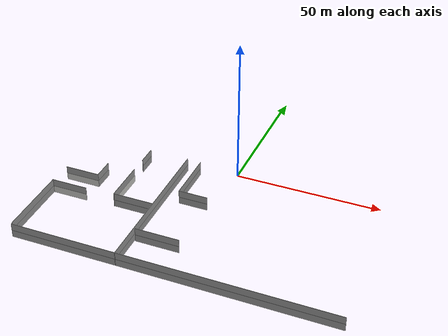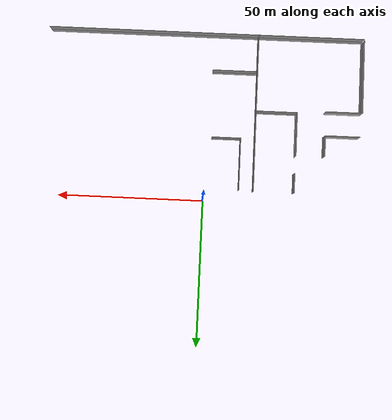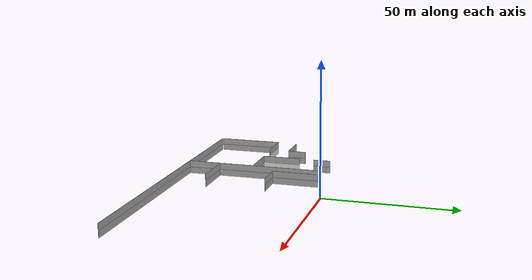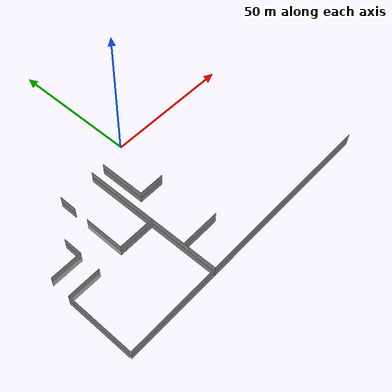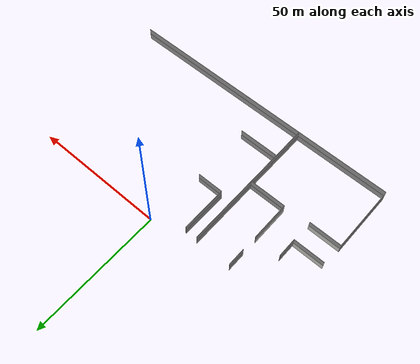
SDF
<sdf version="1.6">
 <model name="new_building">
  <pose>1.10912 -6.88825 0 0 -0 0</pose>
  <link name="Wall_10">
   <collision name="Wall_10_Collision">
    <geometry><box><size>25.25 0.15 2.5</size></box></geometry>
    <pose>0 0 1.25 0 -0 0</pose>
   </collision>
   <visual name="Wall_10_Visual">
    <pose>0 0 1.25 0 -0 0</pose>
    <geometry><box><size>25.25 0.15 2.5</size></box></geometry>
    <material>
     <script><uri>file://media/materials/scripts/gazebo.material</uri><name>Gazebo/Grey</name></script>
     <ambient>1 1 1 1</ambient>
    </material>
    <meta><layer>0</layer></meta>
   </visual>
   <pose>-54.4774 -37.7529 0 0 -0 1.5708</pose>
  </link>
  <link name="Wall_11">
   <collision name="Wall_11_Collision">
    <geometry><box><size>12.5 0.15 2.5</size></box></geometry>
    <pose>0 0 1.25 0 -0 0</pose>
   </collision>
   <visual name="Wall_11_Visual">
    <pose>0 0 1.25 0 -0 0</pose>
    <geometry><box><size>12.5 0.15 2.5</size></box></geometry>
    <material>
     <script><uri>file://media/materials/scripts/gazebo.material</uri><name>Gazebo/CeilingTiled</name></script>
     <ambient>1 1 1 1</ambient>
    </material>
    <meta><layer>0</layer></meta>
   </visual>
   <pose>-48.3024 -25.2029 0 0 -0 0</pose>
  </link>
  <link name="Wall_121">
   <collision name="Wall_121_Collision">
    <geometry><box><size>15 0.15 2.5</size></box></geometry>
    <pose>0 0 1.25 0 -0 0</pose>
   </collision>
   <visual name="Wall_121_Visual">
    <pose>0 0 1.25 0 -0 0</pose>
    <geometry><box><size>15 0.15 2.5</size></box></geometry>
    <material>
     <script><uri>file://media/materials/scripts/gazebo.material</uri><name>Gazebo/Grey</name></script>
     <ambient>1 1 1 1</ambient>
    </material>
    <meta><layer>1</layer></meta>
   </visual>
   <pose>-10.3428 -38.0102 2.5 0 -0 0</pose>
  </link>
  <link name="Wall_127">
   <collision name="Wall_127_Collision">
    <geometry><box><size>17.75 0.15 2.5</size></box></geometry>
    <pose>0 0 1.25 0 -0 0</pose>
   </collision>
   <visual name="Wall_127_Visual">
    <pose>0 0 1.25 0 -0 0</pose>
    <geometry><box><size>17.75 0.15 2.5</size></box></geometry>
    <material>
     <script><uri>file://media/materials/scripts/gazebo.material</uri><name>Gazebo/Grey</name></script>
     <ambient>1 1 1 1</ambient>
    </material>
    <meta><layer>1</layer></meta>
   </visual>
   <pose>-13.2896 -6.08457 2.5 0 -0 -1.5708</pose>
  </link>
  <link name="Wall_128">
   <collision name="Wall_128_Collision">
    <geometry><box><size>10 0.15 2.5</size></box></geometry>
    <pose>0 0 1.25 0 -0 0</pose>
   </collision>
   <visual name="Wall_128_Visual">
    <pose>0 0 1.25 0 -0 0</pose>
    <geometry><box><size>10 0.15 2.5</size></box></geometry>
    <material>
     <script><uri>file://media/materials/scripts/gazebo.material</uri><name>Gazebo/Grey</name></script>
     <ambient>1 1 1 1</ambient>
    </material>
    <meta><layer>1</layer></meta>
   </visual>
   <pose>-8.36459 -14.8846 2.5 0 -0 0</pose>
  </link>
  <link name="Wall_15">
   <collision name="Wall_15_Collision">
    <geometry><box><size>54 0.15 2.5</size></box></geometry>
    <pose>0 0 1.25 0 -0 0</pose>
   </collision>
   <visual name="Wall_15_Visual">
    <pose>0 0 1.25 0 -0 0</pose>
    <geometry><box><size>54 0.15 2.5</size></box></geometry>
    <material>
     <script><uri>file://media/materials/scripts/gazebo.material</uri><name>Gazebo/Grey</name></script>
     <ambient>1 1 1 1</ambient>
    </material>
    <meta><layer>0</layer></meta>
   </visual>
   <pose>-18.223 -23.8906 0 0 -0 1.5708</pose>
  </link>
  <link name="Wall_17">
   <collision name="Wall_17_Collision">
    <geometry><box><size>6.75 0.15 2.5</size></box></geometry>
    <pose>0 0 1.25 0 -0 0</pose>
   </collision>
   <visual name="Wall_17_Visual">
    <pose>0 0 1.25 0 -0 0</pose>
    <geometry><box><size>6.75 0.15 2.5</size></box></geometry>
    <material>
     <script><uri>file://media/materials/scripts/gazebo.material</uri><name>Gazebo/Grey</name></script>
     <ambient>1 1 1 1</ambient>
    </material>
    <meta><layer>0</layer></meta>
   </visual>
   <pose>-32.073 -0.265623 0 0 -0 -1.5708</pose>
  </link>
  <link name="Wall_19">
   <collision name="Wall_19_Collision">
    <geometry><box><size>15 0.15 2.5</size></box></geometry>
    <pose>0 0 1.25 0 -0 0</pose>
   </collision>
   <visual name="Wall_19_Visual">
    <pose>0 0 1.25 0 -0 0</pose>
    <geometry><box><size>15 0.15 2.5</size></box></geometry>
    <material>
     <script><uri>file://media/materials/scripts/gazebo.material</uri><name>Gazebo/CeilingTiled</name></script>
     <ambient>1 1 1 1</ambient>
    </material>
    <meta><layer>0</layer></meta>
   </visual>
   <pose>-32.245 -17.0289 0 0 -0 -1.5708</pose>
  </link>
  <link name="Wall_20">
   <collision name="Wall_20_Collision">
    <geometry><box><size>14 0.15 2.5</size></box></geometry>
    <pose>0 0 1.25 0 -0 0</pose>
   </collision>
   <visual name="Wall_20_Visual">
    <pose>0 0 1.25 0 -0 0</pose>
    <geometry><box><size>14 0.15 2.5</size></box></geometry>
    <material>
     <script><uri>file://media/materials/scripts/gazebo.material</uri><name>Gazebo/Grey</name></script>
     <ambient>1 1 1 1</ambient>
    </material>
    <meta><layer>0</layer></meta>
   </visual>
   <pose>-25.32 -24.4539 0 0 -0 0</pose>
  </link>
  <link name="Wall_22">
   <collision name="Wall_22_Collision">
    <geometry><box><size>12 0.15 2.5</size></box></geometry>
    <pose>0 0 1.25 0 -0 0</pose>
   </collision>
   <visual name="Wall_22_Visual">
    <pose>0 0 1.25 0 -0 0</pose>
    <geometry><box><size>12 0.15 2.5</size></box></geometry>
    <material>
     <script><uri>file://media/materials/scripts/gazebo.material</uri><name>Gazebo/CeilingTiled</name></script>
     <ambient>1 1 1 1</ambient>
    </material>
    <meta><layer>0</layer></meta>
   </visual>
   <pose>-47.9647 -16.9443 0 0 -0 0</pose>
  </link>
  <link name="Wall_23">
   <collision name="Wall_23_Collision">
    <geometry><box><size>7.25 0.15 2.5</size></box></geometry>
    <pose>0 0 1.25 0 -0 0</pose>
   </collision>
   <visual name="Wall_23_Visual">
    <pose>0 0 1.25 0 -0 0</pose>
    <geometry><box><size>7.25 0.15 2.5</size></box></geometry>
    <material>
     <script><uri>file://media/materials/scripts/gazebo.material</uri><name>Gazebo/Grey</name></script>
     <ambient>1 1 1 1</ambient>
    </material>
    <meta><layer>0</layer></meta>
   </visual>
   <pose>-42.0397 -13.3943 0 0 -0 1.5708</pose>
  </link>
  <link name="Wall_5">
   <collision name="Wall_5_Collision">
    <geometry><box><size>108.25 0.15 2.5</size></box></geometry>
    <pose>0 0 1.25 0 -0 0</pose>
   </collision>
   <visual name="Wall_5_Visual">
    <pose>0 0 1.25 0 -0 0</pose>
    <geometry><box><size>108.25 0.15 2.5</size></box></geometry>
    <material>
     <script><uri>file://media/materials/scripts/gazebo.material</uri><name>Gazebo/Grey</name></script>
     <ambient>1 1 1 1</ambient>
    </material>
    <meta><layer>0</layer></meta>
   </visual>
   <pose>-0.315662 -50.7901 0 0 -0 0</pose>
  </link>
  <link name="Wall_67">
   <collision name="Wall_67_Collision">
    <geometry><box><size>15 0.15 2.5</size></box></geometry>
    <pose>0 0 1.25 0 -0 0</pose>
   </collision>
   <visual name="Wall_67_Visual">
    <pose>0 0 1.25 0 -0 0</pose>
    <geometry><box><size>15 0.15 2.5</size></box></geometry>
    <material>
     <script><uri>file://media/materials/scripts/gazebo.material</uri><name>Gazebo/Grey</name></script>
     <ambient>1 1 1 1</ambient>
    </material>
    <meta><layer>0</layer></meta>
   </visual>
   <pose>-10.3428 -38.0102 0 0 -0 0</pose>
  </link>
  <link name="Wall_83">
   <collision name="Wall_83_Collision">
    <geometry><box><size>17.75 0.15 2.5</size></box></geometry>
    <pose>0 0 1.25 0 -0 0</pose>
   </collision>
   <visual name="Wall_83_Visual">
    <pose>0 0 1.25 0 -0 0</pose>
    <geometry><box><size>17.75 0.15 2.5</size></box></geometry>
    <material>
     <script><uri>file://media/materials/scripts/gazebo.material</uri><name>Gazebo/Grey</name></script>
     <ambient>1 1 1 1</ambient>
    </material>
    <meta><layer>0</layer></meta>
   </visual>
   <pose>-13.2896 -6.08457 0 0 -0 -1.5708</pose>
  </link>
  <link name="Wall_84">
   <collision name="Wall_84_Collision">
    <geometry><box><size>10 0.15 2.5</size></box></geometry>
    <pose>0 0 1.25 0 -0 0</pose>
   </collision>
   <visual name="Wall_84_Visual">
    <pose>0 0 1.25 0 -0 0</pose>
    <geometry><box><size>10 0.15 2.5</size></box></geometry>
    <material>
     <script><uri>file://media/materials/scripts/gazebo.material</uri><name>Gazebo/Grey</name></script>
     <ambient>1 1 1 1</ambient>
    </material>
    <meta><layer>0</layer></meta>
   </visual>
   <pose>-8.36459 -14.8846 0 0 -0 0</pose>
  </link>
  <link name="Wall_86">
   <collision name="Wall_86_Collision">
    <geometry><box><size>108.25 0.15 2.5</size></box></geometry>
    <pose>0 0 1.25 0 -0 0</pose>
   </collision>
   <visual name="Wall_86_Visual">
    <pose>0 0 1.25 0 -0 0</pose>
    <geometry><box><size>108.25 0.15 2.5</size></box></geometry>
    <material>
     <script><uri>file://media/materials/scripts/gazebo.material</uri><name>Gazebo/Grey</name></script>
     <ambient>1 1 1 1</ambient>
    </material>
    <meta><layer>1</layer></meta>
   </visual>
   <pose>-0.315662 -50.7901 2.5 0 -0 0</pose>
  </link>
  <link name="Wall_90">
   <collision name="Wall_90_Collision">
    <geometry><box><size>25.25 0.15 2.5</size></box></geometry>
    <pose>0 0 1.25 0 -0 0</pose>
   </collision>
   <visual name="Wall_90_Visual">
    <pose>0 0 1.25 0 -0 0</pose>
    <geometry><box><size>25.25 0.15 2.5</size></box></geometry>
    <material>
     <script><uri>file://media/materials/scripts/gazebo.material</uri><name>Gazebo/Grey</name></script>
     <ambient>1 1 1 1</ambient>
    </material>
    <meta><layer>1</layer></meta>
   </visual>
   <pose>-54.4774 -37.7529 2.5 0 -0 1.5708</pose>
  </link>
  <link name="Wall_91">
   <collision name="Wall_91_Collision">
    <geometry><box><size>12.5 0.15 2.5</size></box></geometry>
    <pose>0 0 1.25 0 -0 0</pose>
   </collision>
   <visual name="Wall_91_Visual">
    <pose>0 0 1.25 0 -0 0</pose>
    <geometry><box><size>12.5 0.15 2.5</size></box></geometry>
    <material>
     <script><uri>file://media/materials/scripts/gazebo.material</uri><name>Gazebo/Grey</name></script>
     <ambient>1 1 1 1</ambient>
    </material>
    <meta><layer>1</layer></meta>
   </visual>
   <pose>-48.3024 -25.2029 2.5 0 -0 0</pose>
  </link>
  <link name="Wall_92">
   <collision name="Wall_92_Collision">
    <geometry><box><size>54 0.15 2.5</size></box></geometry>
    <pose>0 0 1.25 0 -0 0</pose>
   </collision>
   <visual name="Wall_92_Visual">
    <pose>0 0 1.25 0 -0 0</pose>
    <geometry><box><size>54 0.15 2.5</size></box></geometry>
    <material>
     <script><uri>file://media/materials/scripts/gazebo.material</uri><name>Gazebo/Grey</name></script>
     <ambient>1 1 1 1</ambient>
    </material>
    <meta><layer>1</layer></meta>
   </visual>
   <pose>-18.223 -23.8906 2.5 0 -0 1.5708</pose>
  </link>
  <link name="Wall_94">
   <collision name="Wall_94_Collision">
    <geometry><box><size>6.75 0.15 2.5</size></box></geometry>
    <pose>0 0 1.25 0 -0 0</pose>
   </collision>
   <visual name="Wall_94_Visual">
    <pose>0 0 1.25 0 -0 0</pose>
    <geometry><box><size>6.75 0.15 2.5</size></box></geometry>
    <material>
     <script><uri>file://media/materials/scripts/gazebo.material</uri><name>Gazebo/Grey</name></script>
     <ambient>1 1 1 1</ambient>
    </material>
    <meta><layer>1</layer></meta>
   </visual>
   <pose>-32.073 -0.265623 2.5 0 -0 -1.5708</pose>
  </link>
  <link name="Wall_95">
   <collision name="Wall_95_Collision">
    <geometry><box><size>15 0.15 2.5</size></box></geometry>
    <pose>0 0 1.25 0 -0 0</pose>
   </collision>
   <visual name="Wall_95_Visual">
    <pose>0 0 1.25 0 -0 0</pose>
    <geometry><box><size>15 0.15 2.5</size></box></geometry>
    <material>
     <script><uri>file://media/materials/scripts/gazebo.material</uri><name>Gazebo/Grey</name></script>
     <ambient>1 1 1 1</ambient>
    </material>
    <meta><layer>1</layer></meta>
   </visual>
   <pose>-32.245 -17.0289 2.5 0 -0 -1.5708</pose>
  </link>
  <link name="Wall_96">
   <collision name="Wall_96_Collision">
    <geometry><box><size>14 0.15 2.5</size></box></geometry>
    <pose>0 0 1.25 0 -0 0</pose>
   </collision>
   <visual name="Wall_96_Visual">
    <pose>0 0 1.25 0 -0 0</pose>
    <geometry><box><size>14 0.15 2.5</size></box></geometry>
    <material>
     <script><uri>file://media/materials/scripts/gazebo.material</uri><name>Gazebo/Grey</name></script>
     <ambient>1 1 1 1</ambient>
    </material>
    <meta><layer>1</layer></meta>
   </visual>
   <pose>-25.32 -24.4539 2.5 0 -0 0</pose>
  </link>
  <link name="Wall_97">
   <collision name="Wall_97_Collision">
    <geometry><box><size>12 0.15 2.5</size></box></geometry>
    <pose>0 0 1.25 0 -0 0</pose>
   </collision>
   <visual name="Wall_97_Visual">
    <pose>0 0 1.25 0 -0 0</pose>
    <geometry><box><size>12 0.15 2.5</size></box></geometry>
    <material>
     <script><uri>file://media/materials/scripts/gazebo.material</uri><name>Gazebo/Grey</name></script>
     <ambient>1 1 1 1</ambient>
    </material>
    <meta><layer>1</layer></meta>
   </visual>
   <pose>-47.9647 -16.9443 2.5 0 -0 0</pose>
  </link>
  <link name="Wall_98">
   <collision name="Wall_98_Collision">
    <geometry><box><size>7.25 0.15 2.5</size></box></geometry>
    <pose>0 0 1.25 0 -0 0</pose>
   </collision>
   <visual name="Wall_98_Visual">
    <pose>0 0 1.25 0 -0 0</pose>
    <geometry><box><size>7.25 0.15 2.5</size></box></geometry>
    <material>
     <script><uri>file://media/materials/scripts/gazebo.material</uri><name>Gazebo/Grey</name></script>
     <ambient>1 1 1 1</ambient>
    </material>
    <meta><layer>1</layer></meta>
   </visual>
   <pose>-42.0397 -13.3943 2.5 0 -0 1.5708</pose>
  </link>
  <static>1</static>
 </model>
</sdf>
